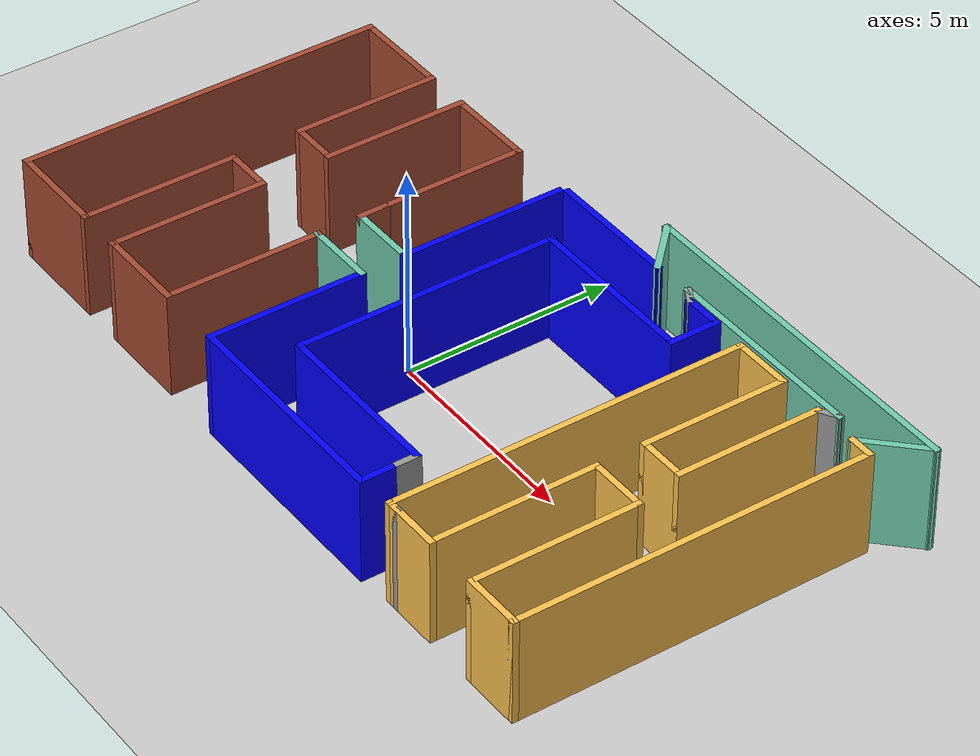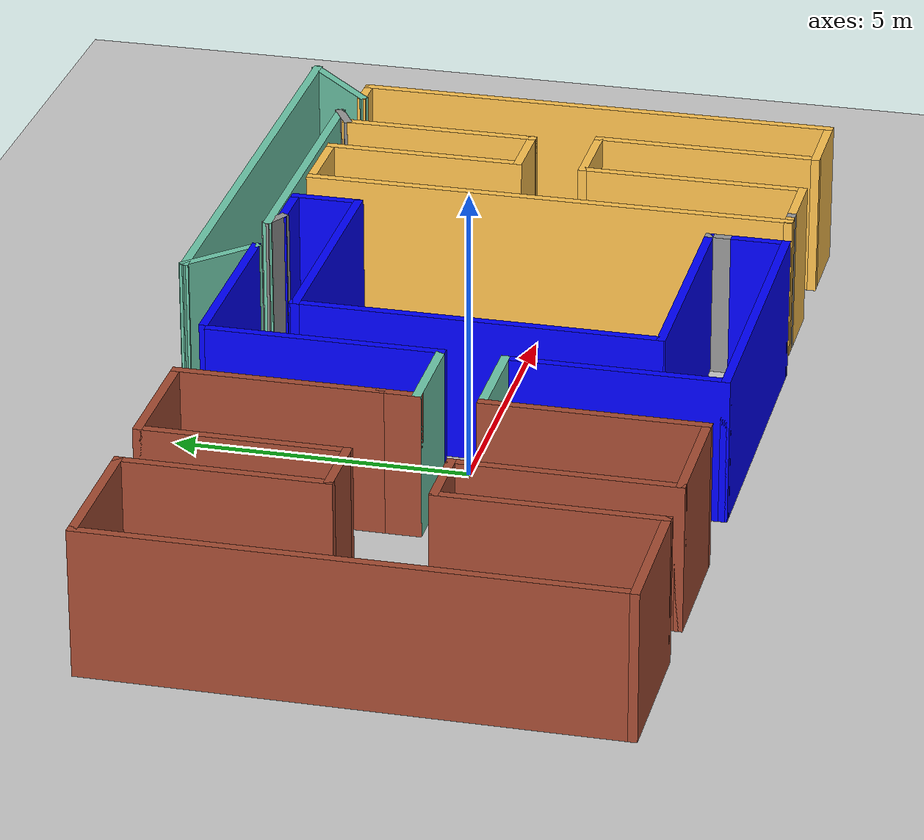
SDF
<sdf version="1.6">
 <world name="default">
  <light name="sun" type="directional">
   <pose>0 0 10 0 -0 0</pose>
   <diffuse>0.8 0.8 0.8 1</diffuse>
   <specular>0.2 0.2 0.2 1</specular>
   <attenuation>
    <range>1000</range>
    <constant>0.9</constant>
    <linear>0.01</linear>
    <quadratic>0.001</quadratic>
   </attenuation>
   <direction>-0.5 0.1 -0.9</direction>
  </light>
  <model name="ground_plane">
   <static>1</static>
   <link name="link">
    <collision name="collision">
     <geometry><plane><normal>0 0 1</normal><size>100 100</size></plane></geometry>
     <surface>
      <contact><collide_bitmask>65535</collide_bitmask></contact>
      <friction><ode><mu>100</mu><mu2>50</mu2></ode></friction>
     </surface>
    </collision>
    <visual name="visual">
     <cast_shadows>0</cast_shadows>
     <geometry><plane><normal>0 0 1</normal><size>100 100</size></plane></geometry>
     <material>
      <script><uri>file://media/materials/scripts/gazebo.material</uri><name>Gazebo/Grey</name></script>
     </material>
    </visual>
   </link>
  </model>
  <gravity>0 0 -9.8</gravity>
  <magnetic_field>6e-06 2.3e-05 -4.2e-05</magnetic_field>
  <atmosphere type="adiabatic"/>
  <physics name="default_physics" default="0" type="ode">
   <max_step_size>0.001</max_step_size>
   <real_time_factor>1</real_time_factor>
   <real_time_update_rate>1000</real_time_update_rate>
  </physics>
  <scene><ambient>0.4 0.4 0.4 1</ambient><background>0.7 0.7 0.7 1</background><shadows>1</shadows></scene>
  <spherical_coordinates>
   <surface_model>EARTH_WGS84</surface_model>
   <latitude_deg>0</latitude_deg>
   <longitude_deg>0</longitude_deg>
   <elevation>0</elevation>
   <heading_deg>0</heading_deg>
  </spherical_coordinates>
  <model name="HCH">
   <pose>1.28494 0.480102 0 0 -0 0</pose>
   <link name="Wall_10">
    <collision name="Wall_10_Collision">
     <geometry><box><size>3.5 0.15 2.5</size></box></geometry>
     <pose>0 0 1.25 0 -0 0</pose>
    </collision>
    <visual name="Wall_10_Visual">
     <pose>0 0 1.25 0 -0 0</pose>
     <geometry><box><size>3.5 0.15 2.5</size></box></geometry>
     <material>
      <script><uri>file://media/materials/scripts/gazebo.material</uri><name>Gazebo/Bricks</name></script>
      <ambient>1 1 1 1</ambient>
     </material>
     <meta><layer>0</layer></meta>
    </visual>
    <pose>-5.5798 2.11828 0 0 -0 1.5708</pose>
   </link>
   <link name="Wall_11">
    <collision name="Wall_11_Collision">
     <geometry><box><size>2.25 0.15 2.5</size></box></geometry>
     <pose>0 0 1.25 0 -0 0</pose>
    </collision>
    <visual name="Wall_11_Visual">
     <pose>0 0 1.25 0 -0 0</pose>
     <geometry><box><size>2.25 0.15 2.5</size></box></geometry>
     <material>
      <script><uri>file://media/materials/scripts/gazebo.material</uri><name>Gazebo/Bricks</name></script>
      <ambient>1 1 1 1</ambient>
     </material>
     <meta><layer>0</layer></meta>
    </visual>
    <pose>-4.5298 3.79328 0 0 -0 0</pose>
   </link>
   <link name="Wall_12">
    <collision name="Wall_12_Collision">
     <geometry><box><size>3.5 0.15 2.5</size></box></geometry>
     <pose>0 0 1.25 0 -0 0</pose>
    </collision>
    <visual name="Wall_12_Visual">
     <pose>0 0 1.25 0 -0 0</pose>
     <geometry><box><size>3.5 0.15 2.5</size></box></geometry>
     <material>
      <script><uri>file://media/materials/scripts/gazebo.material</uri><name>Gazebo/Bricks</name></script>
      <ambient>1 1 1 1</ambient>
     </material>
     <meta><layer>0</layer></meta>
    </visual>
    <pose>-3.4798 2.11828 0 0 0 -1.5708</pose>
   </link>
   <link name="Wall_14">
    <collision name="Wall_14_Collision">
     <geometry><box><size>3.75 0.15 2.5</size></box></geometry>
     <pose>0 0 1.25 0 -0 0</pose>
    </collision>
    <visual name="Wall_14_Visual">
     <pose>0 0 1.25 0 -0 0</pose>
     <geometry><box><size>3.75 0.15 2.5</size></box></geometry>
     <material>
      <script><uri>file://media/materials/scripts/gazebo.material</uri><name>Gazebo/Bricks</name></script>
      <ambient>1 1 1 1</ambient>
     </material>
     <meta><layer>0</layer></meta>
    </visual>
    <pose>-6.6798 -3.00672 0 0 -0 1.5708</pose>
   </link>
   <link name="Wall_15">
    <collision name="Wall_15_Collision">
     <geometry><box><size>1.25 0.15 2.5</size></box></geometry>
     <pose>0 0 1.25 0 -0 0</pose>
    </collision>
    <visual name="Wall_15_Visual">
     <pose>0 0 1.25 0 -0 0</pose>
     <geometry><box><size>1.25 0.15 2.5</size></box></geometry>
     <material>
      <script><uri>file://media/materials/scripts/gazebo.material</uri><name>Gazebo/Bricks</name></script>
      <ambient>1 1 1 1</ambient>
     </material>
     <meta><layer>0</layer></meta>
    </visual>
    <pose>-6.1298 -1.20672 0 0 -0 0</pose>
   </link>
   <link name="Wall_16">
    <collision name="Wall_16_Collision">
     <geometry><box><size>3.75 0.15 2.5</size></box></geometry>
     <pose>0 0 1.25 0 -0 0</pose>
    </collision>
    <visual name="Wall_16_Visual">
     <pose>0 0 1.25 0 -0 0</pose>
     <geometry><box><size>3.75 0.15 2.5</size></box></geometry>
     <material>
      <script><uri>file://media/materials/scripts/gazebo.material</uri><name>Gazebo/Bricks</name></script>
      <ambient>1 1 1 1</ambient>
     </material>
     <meta><layer>0</layer></meta>
    </visual>
    <pose>-5.5798 -3.00672 0 0 0 -1.5708</pose>
   </link>
   <link name="Wall_17">
    <collision name="Wall_17_Collision">
     <geometry><box><size>2.25 0.15 2.5</size></box></geometry>
     <pose>0 0 1.25 0 -0 0</pose>
    </collision>
    <visual name="Wall_17_Visual">
     <pose>0 0 1.25 0 -0 0</pose>
     <geometry><box><size>2.25 0.15 2.5</size></box></geometry>
     <material>
      <script><uri>file://media/materials/scripts/gazebo.material</uri><name>Gazebo/Bricks</name></script>
      <ambient>1 1 1 1</ambient>
     </material>
     <meta><layer>0</layer></meta>
    </visual>
    <pose>-4.5298 -4.80672 0 0 -0 0</pose>
   </link>
   <link name="Wall_18">
    <collision name="Wall_18_Collision">
     <geometry><box><size>3.75 0.15 2.5</size></box></geometry>
     <pose>0 0 1.25 0 -0 0</pose>
    </collision>
    <visual name="Wall_18_Visual">
     <pose>0 0 1.25 0 -0 0</pose>
     <geometry><box><size>3.75 0.15 2.5</size></box></geometry>
     <material>
      <script><uri>file://media/materials/scripts/gazebo.material</uri><name>Gazebo/Bricks</name></script>
      <ambient>1 1 1 1</ambient>
     </material>
     <meta><layer>0</layer></meta>
    </visual>
    <pose>-3.4798 -3.00672 0 0 -0 1.5708</pose>
   </link>
   <link name="Wall_19">
    <collision name="Wall_19_Collision">
     <geometry><box><size>1.75 0.15 2.5</size></box></geometry>
     <pose>0 0 1.25 0 -0 0</pose>
    </collision>
    <visual name="Wall_19_Visual">
     <pose>0 0 1.25 0 -0 0</pose>
     <geometry><box><size>1.75 0.15 2.5</size></box></geometry>
     <material>
      <script><uri>file://media/materials/scripts/gazebo.material</uri><name>Gazebo/Grey</name></script>
      <ambient>0.435294 0.796078 0.67451 1</ambient>
     </material>
     <meta><layer>0</layer></meta>
    </visual>
    <pose>-2.6798 -1.20672 0 0 -0 0</pose>
   </link>
   <link name="Wall_21">
    <collision name="Wall_21_Collision">
     <geometry><box><size>0.75 0.15 2.5</size></box></geometry>
     <pose>0 0 1.25 0 -0 0</pose>
    </collision>
    <visual name="Wall_21_Visual">
     <pose>0 0 1.25 0 -0 0</pose>
     <geometry><box><size>0.75 0.15 2.5</size></box></geometry>
     <material>
      <script><uri>file://media/materials/scripts/gazebo.material</uri><name>Gazebo/Bricks</name></script>
      <ambient>1 1 1 1</ambient>
     </material>
     <meta><layer>0</layer></meta>
    </visual>
    <pose>-3.4798 0.143283 0 0 0 -1.5708</pose>
   </link>
   <link name="Wall_27">
    <collision name="Wall_27_Collision">
     <geometry><box><size>1.75 0.15 2.5</size></box></geometry>
     <pose>0 0 1.25 0 -0 0</pose>
    </collision>
    <visual name="Wall_27_Visual">
     <pose>0 0 1.25 0 -0 0</pose>
     <geometry><box><size>1.75 0.15 2.5</size></box></geometry>
     <material>
      <script><uri>file://media/materials/scripts/gazebo.material</uri><name>Gazebo/Grey</name></script>
      <ambient>0.435294 0.796078 0.67451 1</ambient>
     </material>
     <meta><layer>0</layer></meta>
    </visual>
    <pose>-2.6798 -0.156717 0 0 -0 0</pose>
   </link>
   <link name="Wall_28">
    <collision name="Wall_28_Collision">
     <geometry><box><size>4 0.15 2.5</size></box></geometry>
     <pose>0 0 1.25 0 -0 0</pose>
    </collision>
    <visual name="Wall_28_Visual">
     <pose>0 0 1.25 0 -0 0</pose>
     <geometry><box><size>4 0.15 2.5</size></box></geometry>
     <material>
      <script><uri>file://media/materials/scripts/gazebo.material</uri><name>Gazebo/Grey</name></script>
      <ambient>0 0 1 1</ambient>
     </material>
     <meta><layer>0</layer></meta>
    </visual>
    <pose>-1.8798 1.76828 0 0 -0 1.5708</pose>
   </link>
   <link name="Wall_3">
    <collision name="Wall_3_Collision">
     <geometry><box><size>2.5 0.15 2.5</size></box></geometry>
     <pose>0 0 1.25 0 -0 0</pose>
    </collision>
    <visual name="Wall_3_Visual">
     <pose>0 0 1.25 0 -0 0</pose>
     <geometry><box><size>2.5 0.15 2.5</size></box></geometry>
     <material>
      <script><uri>file://media/materials/scripts/gazebo.material</uri><name>Gazebo/Bricks</name></script>
      <ambient>1 1 1 1</ambient>
     </material>
     <meta><layer>0</layer></meta>
    </visual>
    <pose>-7.8548 -4.80672 0 0 -0 0</pose>
   </link>
   <link name="Wall_30">
    <collision name="Wall_30_Collision">
     <geometry><box><size>1.25 0.15 2.5</size></box></geometry>
     <pose>0 0 1.25 0 -0 0</pose>
    </collision>
    <visual name="Wall_30_Visual">
     <pose>0 0 1.25 0 -0 0</pose>
     <geometry><box><size>1.25 0.15 2.5</size></box></geometry>
     <material>
      <script><uri>file://media/materials/scripts/gazebo.material</uri><name>Gazebo/Grey</name></script>
      <ambient>0 0 1 1</ambient>
     </material>
     <meta><layer>0</layer></meta>
    </visual>
    <pose>3.4702 3.14328 0 0 0 -1.5708</pose>
   </link>
   <link name="Wall_34">
    <collision name="Wall_34_Collision">
     <geometry><box><size>3.75 0.15 2.5</size></box></geometry>
     <pose>0 0 1.25 0 -0 0</pose>
    </collision>
    <visual name="Wall_34_Visual">
     <pose>0 0 1.25 0 -0 0</pose>
     <geometry><box><size>3.75 0.15 2.5</size></box></geometry>
     <material>
      <script><uri>file://media/materials/scripts/gazebo.material</uri><name>Gazebo/Grey</name></script>
      <ambient>0 0 1 1</ambient>
     </material>
     <meta><layer>0</layer></meta>
    </visual>
    <pose>-1.8798 -3.00672 0 0 0 -1.5708</pose>
   </link>
   <link name="Wall_37">
    <collision name="Wall_37_Collision">
     <geometry><box><size>5.5 0.15 2.5</size></box></geometry>
     <pose>0 0 1.25 0 -0 0</pose>
    </collision>
    <visual name="Wall_37_Visual">
     <pose>0 0 1.25 0 -0 0</pose>
     <geometry><box><size>5.5 0.15 2.5</size></box></geometry>
     <material>
      <script><uri>file://media/materials/scripts/gazebo.material</uri><name>Gazebo/Grey</name></script>
      <ambient>0 0 1 1</ambient>
     </material>
     <meta><layer>0</layer></meta>
    </visual>
    <pose>0.795197 -4.80672 0 0 -0 0</pose>
   </link>
   <link name="Wall_38">
    <collision name="Wall_38_Collision">
     <geometry><box><size>1 0.15 2.5</size></box></geometry>
     <pose>0 0 1.25 0 -0 0</pose>
    </collision>
    <visual name="Wall_38_Visual">
     <pose>0 0 1.25 0 -0 0</pose>
     <geometry><box><size>1 0.15 2.5</size></box></geometry>
     <material>
      <script><uri>file://media/materials/scripts/gazebo.material</uri><name>Gazebo/Grey</name></script>
      <ambient>0 0 1 1</ambient>
     </material>
     <meta><layer>0</layer></meta>
    </visual>
    <pose>3.4702 -4.38172 0 0 -0 1.5708</pose>
   </link>
   <link name="Wall_48">
    <collision name="Wall_48_Collision">
     <geometry><box><size>4.25 0.15 2.5</size></box></geometry>
     <pose>0 0 1.25 0 -0 0</pose>
    </collision>
    <visual name="Wall_48_Visual">
     <pose>0 0 1.25 0 -0 0</pose>
     <geometry><box><size>4.25 0.15 2.5</size></box></geometry>
     <material>
      <script><uri>file://media/materials/scripts/gazebo.material</uri><name>Gazebo/Grey</name></script>
      <ambient>0 0 1 1</ambient>
     </material>
     <meta><layer>0</layer></meta>
    </visual>
    <pose>1.4202 2.59328 0 0 -0 3.14159</pose>
   </link>
   <link name="Wall_49">
    <collision name="Wall_49_Collision">
     <geometry><box><size>6.25 0.15 2.5</size></box></geometry>
     <pose>0 0 1.25 0 -0 0</pose>
    </collision>
    <visual name="Wall_49_Visual">
     <pose>0 0 1.25 0 -0 0</pose>
     <geometry><box><size>6.25 0.15 2.5</size></box></geometry>
     <material>
      <script><uri>file://media/materials/scripts/gazebo.material</uri><name>Gazebo/Grey</name></script>
      <ambient>0 0 1 1</ambient>
     </material>
     <meta><layer>0</layer></meta>
    </visual>
    <pose>-0.629802 -0.430117 0 0 0 -1.5708</pose>
   </link>
   <link name="Wall_50">
    <collision name="Wall_50_Collision">
     <geometry><box><size>4.25 0.15 2.5</size></box></geometry>
     <pose>0 0 1.25 0 -0 0</pose>
    </collision>
    <visual name="Wall_50_Visual">
     <pose>0 0 1.25 0 -0 0</pose>
     <geometry><box><size>4.25 0.15 2.5</size></box></geometry>
     <material>
      <script><uri>file://media/materials/scripts/gazebo.material</uri><name>Gazebo/Grey</name></script>
      <ambient>0 0 1 1</ambient>
     </material>
     <meta><layer>0</layer></meta>
    </visual>
    <pose>1.4202 -3.50672 0 0 -0 0</pose>
   </link>
   <link name="Wall_51">
    <collision name="Wall_51_Collision">
     <geometry><box><size>0.6 0.15 2.5</size></box></geometry>
     <pose>0 0 1.25 0 -0 0</pose>
    </collision>
    <visual name="Wall_51_Visual">
     <pose>0 0 1.25 0 -0 0</pose>
     <geometry><box><size>0.6 0.15 2.5</size></box></geometry>
     <material>
      <script><uri>file://media/materials/scripts/gazebo.material</uri><name>Gazebo/Grey</name></script>
      <ambient>1 1 1 1</ambient>
     </material>
     <meta><layer>0</layer></meta>
    </visual>
    <pose>3.4702 -3.73172 0 0 0 -1.5708</pose>
   </link>
   <link name="Wall_53">
    <collision name="Wall_53_Collision">
     <geometry><box><size>1.5 0.15 2.5</size></box></geometry>
     <pose>0 0 1.25 0 -0 0</pose>
    </collision>
    <visual name="Wall_53_Visual">
     <pose>0 0 1.25 0 -0 0</pose>
     <geometry><box><size>1.5 0.15 2.5</size></box></geometry>
     <material>
      <script><uri>file://media/materials/scripts/gazebo.material</uri><name>Gazebo/Grey</name></script>
      <ambient>1 0.764706 0.305882 1</ambient>
     </material>
     <meta><layer>0</layer></meta>
    </visual>
    <pose>5.00454 3.64428 0 0 -0 0</pose>
   </link>
   <link name="Wall_54">
    <collision name="Wall_54_Collision">
     <geometry><box><size>3.5 0.15 2.5</size></box></geometry>
     <pose>0 0 1.25 0 -0 0</pose>
    </collision>
    <visual name="Wall_54_Visual">
     <pose>0 0 1.25 0 -0 0</pose>
     <geometry><box><size>3.5 0.15 2.5</size></box></geometry>
     <material>
      <script><uri>file://media/materials/scripts/gazebo.material</uri><name>Gazebo/Grey</name></script>
      <ambient>1 0.764706 0.305882 1</ambient>
     </material>
     <meta><layer>0</layer></meta>
    </visual>
    <pose>5.67954 1.96928 0 0 0 -1.5708</pose>
   </link>
   <link name="Wall_55">
    <collision name="Wall_55_Collision">
     <geometry><box><size>1.25 0.15 2.5</size></box></geometry>
     <pose>0 0 1.25 0 -0 0</pose>
    </collision>
    <visual name="Wall_55_Visual">
     <pose>0 0 1.25 0 -0 0</pose>
     <geometry><box><size>1.25 0.15 2.5</size></box></geometry>
     <material>
      <script><uri>file://media/materials/scripts/gazebo.material</uri><name>Gazebo/Grey</name></script>
      <ambient>1 0.764706 0.305882 1</ambient>
     </material>
     <meta><layer>0</layer></meta>
    </visual>
    <pose>6.22954 0.29428 0 0 -0 0</pose>
   </link>
   <link name="Wall_56">
    <collision name="Wall_56_Collision">
     <geometry><box><size>3.5 0.15 2.5</size></box></geometry>
     <pose>0 0 1.25 0 -0 0</pose>
    </collision>
    <visual name="Wall_56_Visual">
     <pose>0 0 1.25 0 -0 0</pose>
     <geometry><box><size>3.5 0.15 2.5</size></box></geometry>
     <material>
      <script><uri>file://media/materials/scripts/gazebo.material</uri><name>Gazebo/Grey</name></script>
      <ambient>1 0.764706 0.305882 1</ambient>
     </material>
     <meta><layer>0</layer></meta>
    </visual>
    <pose>6.77954 1.96928 0 0 -0 1.5708</pose>
   </link>
   <link name="Wall_6">
    <collision name="Wall_6_Collision">
     <geometry><box><size>8.75 0.15 2.5</size></box></geometry>
     <pose>0 0 1.25 0 -0 0</pose>
    </collision>
    <visual name="Wall_6_Visual">
     <pose>0 0 1.25 0 -0 0</pose>
     <geometry><box><size>8.75 0.15 2.5</size></box></geometry>
     <material>
      <script><uri>file://media/materials/scripts/gazebo.material</uri><name>Gazebo/Bricks</name></script>
      <ambient>1 1 1 1</ambient>
     </material>
     <meta><layer>0</layer></meta>
    </visual>
    <pose>-9.0298 -0.506717 0 0 -0 1.5708</pose>
   </link>
   <link name="Wall_60">
    <collision name="Wall_60_Collision">
     <geometry><box><size>8.5 0.15 2.5</size></box></geometry>
     <pose>0 0 1.25 0 -0 0</pose>
    </collision>
    <visual name="Wall_60_Visual">
     <pose>0 0 1.25 0 -0 0</pose>
     <geometry><box><size>8.5 0.15 2.5</size></box></geometry>
     <material>
      <script><uri>file://media/materials/scripts/gazebo.material</uri><name>Gazebo/Grey</name></script>
      <ambient>1 0.764706 0.305882 1</ambient>
     </material>
     <meta><layer>0</layer></meta>
    </visual>
    <pose>8.37954 -0.53072 0 0 0 -1.5708</pose>
   </link>
   <link name="Wall_63">
    <collision name="Wall_63_Collision">
     <geometry><box><size>1.5 0.15 2.5</size></box></geometry>
     <pose>0 0 1.25 0 -0 0</pose>
    </collision>
    <visual name="Wall_63_Visual">
     <pose>0 0 1.25 0 -0 0</pose>
     <geometry><box><size>1.5 0.15 2.5</size></box></geometry>
     <material>
      <script><uri>file://media/materials/scripts/gazebo.material</uri><name>Gazebo/Grey</name></script>
      <ambient>1 0.764706 0.305882 1</ambient>
     </material>
     <meta><layer>0</layer></meta>
    </visual>
    <pose>7.70454 -4.70572 0 0 -0 3.14159</pose>
   </link>
   <link name="Wall_64">
    <collision name="Wall_64_Collision">
     <geometry><box><size>4 0.15 2.5</size></box></geometry>
     <pose>0 0 1.25 0 -0 0</pose>
    </collision>
    <visual name="Wall_64_Visual">
     <pose>0 0 1.25 0 -0 0</pose>
     <geometry><box><size>4 0.15 2.5</size></box></geometry>
     <material>
      <script><uri>file://media/materials/scripts/gazebo.material</uri><name>Gazebo/Grey</name></script>
      <ambient>1 0.764706 0.305882 1</ambient>
     </material>
     <meta><layer>0</layer></meta>
    </visual>
    <pose>7.02954 -2.78072 0 0 -0 1.5708</pose>
   </link>
   <link name="Wall_65">
    <collision name="Wall_65_Collision">
     <geometry><box><size>1.5 0.15 2.5</size></box></geometry>
     <pose>0 0 1.25 0 -0 0</pose>
    </collision>
    <visual name="Wall_65_Visual">
     <pose>0 0 1.25 0 -0 0</pose>
     <geometry><box><size>1.5 0.15 2.5</size></box></geometry>
     <material>
      <script><uri>file://media/materials/scripts/gazebo.material</uri><name>Gazebo/Grey</name></script>
      <ambient>1 0.764706 0.305882 1</ambient>
     </material>
     <meta><layer>0</layer></meta>
    </visual>
    <pose>6.35454 -0.85572 0 0 -0 3.14159</pose>
   </link>
   <link name="Wall_66">
    <collision name="Wall_66_Collision">
     <geometry><box><size>4 0.15 2.5</size></box></geometry>
     <pose>0 0 1.25 0 -0 0</pose>
    </collision>
    <visual name="Wall_66_Visual">
     <pose>0 0 1.25 0 -0 0</pose>
     <geometry><box><size>4 0.15 2.5</size></box></geometry>
     <material>
      <script><uri>file://media/materials/scripts/gazebo.material</uri><name>Gazebo/Grey</name></script>
      <ambient>1 0.764706 0.305882 1</ambient>
     </material>
     <meta><layer>0</layer></meta>
    </visual>
    <pose>5.67954 -2.78072 0 0 0 -1.5708</pose>
   </link>
   <link name="Wall_68">
    <collision name="Wall_68_Collision">
     <geometry><box><size>0.15 0.15 2.5</size></box></geometry>
     <pose>0 0 1.25 0 -0 0</pose>
    </collision>
    <visual name="Wall_68_Visual">
     <pose>0 0 1.25 0 -0 0</pose>
     <geometry><box><size>0.15 0.15 2.5</size></box></geometry>
     <material>
      <script><uri>file://media/materials/scripts/gazebo.material</uri><name>Gazebo/Grey</name></script>
      <ambient>0 0 0 0</ambient>
     </material>
     <meta><layer>0</layer></meta>
    </visual>
    <pose>4.57954 -4.70572 0 0 -0 0</pose>
   </link>
   <link name="Wall_69">
    <collision name="Wall_69_Collision">
     <geometry><box><size>1.5 0.15 2.5</size></box></geometry>
     <pose>0 0 1.25 0 -0 0</pose>
    </collision>
    <visual name="Wall_69_Visual">
     <pose>0 0 1.25 0 -0 0</pose>
     <geometry><box><size>1.5 0.15 2.5</size></box></geometry>
     <material>
      <script><uri>file://media/materials/scripts/gazebo.material</uri><name>Gazebo/Grey</name></script>
      <ambient>1 0.764706 0.305882 1</ambient>
     </material>
     <meta><layer>0</layer></meta>
    </visual>
    <pose>5.00454 -4.70572 0 0 -0 3.14159</pose>
   </link>
   <link name="Wall_7">
    <collision name="Wall_7_Collision">
     <geometry><box><size>2.5 0.15 2.5</size></box></geometry>
     <pose>0 0 1.25 0 -0 0</pose>
    </collision>
    <visual name="Wall_7_Visual">
     <pose>0 0 1.25 0 -0 0</pose>
     <geometry><box><size>2.5 0.15 2.5</size></box></geometry>
     <material>
      <script><uri>file://media/materials/scripts/gazebo.material</uri><name>Gazebo/Bricks</name></script>
      <ambient>1 1 1 1</ambient>
     </material>
     <meta><layer>0</layer></meta>
    </visual>
    <pose>-7.8548 3.79328 0 0 -0 0</pose>
   </link>
   <link name="Wall_70">
    <collision name="Wall_70_Collision">
     <geometry><box><size>8.5 0.15 2.5</size></box></geometry>
     <pose>0 0 1.25 0 -0 0</pose>
    </collision>
    <visual name="Wall_70_Visual">
     <pose>0 0 1.25 0 -0 0</pose>
     <geometry><box><size>8.5 0.15 2.5</size></box></geometry>
     <material>
      <script><uri>file://media/materials/scripts/gazebo.material</uri><name>Gazebo/Grey</name></script>
      <ambient>1 0.764706 0.305882 1</ambient>
     </material>
     <meta><layer>0</layer></meta>
    </visual>
    <pose>4.32954 -0.53072 0 0 -0 1.5708</pose>
   </link>
   <link name="Wall_74">
    <collision name="Wall_74_Collision">
     <geometry><box><size>1.75 0.15 2.5</size></box></geometry>
     <pose>0 0 1.25 0 -0 0</pose>
    </collision>
    <visual name="Wall_74_Visual">
     <pose>0 0 1.25 0 -0 0</pose>
     <geometry><box><size>1.75 0.15 2.5</size></box></geometry>
     <material>
      <script><uri>file://media/materials/scripts/gazebo.material</uri><name>Gazebo/Grey</name></script>
      <ambient>0.435294 0.796078 0.67451 1</ambient>
     </material>
     <meta><layer>0</layer></meta>
    </visual>
    <pose>8.43305 4.20997 0 0 -0 0.785398</pose>
   </link>
   <link name="Wall_75">
    <collision name="Wall_75_Collision">
     <geometry><box><size>8.75 0.15 2.5</size></box></geometry>
     <pose>0 0 1.25 0 -0 0</pose>
    </collision>
    <visual name="Wall_75_Visual">
     <pose>0 0 1.25 0 -0 0</pose>
     <geometry><box><size>8.75 0.15 2.5</size></box></geometry>
     <material>
      <script><uri>file://media/materials/scripts/gazebo.material</uri><name>Gazebo/Grey</name></script>
      <ambient>0.435294 0.796078 0.67451 1</ambient>
     </material>
     <meta><layer>0</layer></meta>
    </visual>
    <pose>4.69874 4.77565 0 0 -0 3.14159</pose>
   </link>
   <link name="Wall_76">
    <collision name="Wall_76_Collision">
     <geometry><box><size>1.5 0.15 2.5</size></box></geometry>
     <pose>0 0 1.25 0 -0 0</pose>
    </collision>
    <visual name="Wall_76_Visual">
     <pose>0 0 1.25 0 -0 0</pose>
     <geometry><box><size>1.5 0.15 2.5</size></box></geometry>
     <material>
      <script><uri>file://media/materials/scripts/gazebo.material</uri><name>Gazebo/Grey</name></script>
      <ambient>0.435294 0.796078 0.67451 1</ambient>
     </material>
     <meta><layer>0</layer></meta>
    </visual>
    <pose>0.876034 4.29835 0 0 0 -0.785398</pose>
   </link>
   <link name="Wall_77">
    <collision name="Wall_77_Collision">
     <geometry><box><size>3.25 0.15 2.5</size></box></geometry>
     <pose>0 0 1.25 0 -0 0</pose>
    </collision>
    <visual name="Wall_77_Visual">
     <pose>0 0 1.25 0 -0 0</pose>
     <geometry><box><size>3.25 0.15 2.5</size></box></geometry>
     <material>
      <script><uri>file://media/materials/scripts/gazebo.material</uri><name>Gazebo/Grey</name></script>
      <ambient>0 0 1 1</ambient>
     </material>
     <meta><layer>0</layer></meta>
    </visual>
    <pose>-0.196669 3.82106 0 0 -0 3.14159</pose>
   </link>
   <link name="Wall_79">
    <collision name="Wall_79_Collision">
     <geometry><box><size>1 0.15 2.5</size></box></geometry>
     <pose>0 0 1.25 0 -0 0</pose>
    </collision>
    <visual name="Wall_79_Visual">
     <pose>0 0 1.25 0 -0 0</pose>
     <geometry><box><size>1 0.15 2.5</size></box></geometry>
     <material>
      <script><uri>file://media/materials/scripts/gazebo.material</uri><name>Gazebo/Grey</name></script>
      <ambient>0 0 1 1</ambient>
     </material>
     <meta><layer>0</layer></meta>
    </visual>
    <pose>3.0452 3.69328 0 0 -0 3.14159</pose>
   </link>
   <link name="Wall_8">
    <collision name="Wall_8_Collision">
     <geometry><box><size>3.5 0.15 2.5</size></box></geometry>
     <pose>0 0 1.25 0 -0 0</pose>
    </collision>
    <visual name="Wall_8_Visual">
     <pose>0 0 1.25 0 -0 0</pose>
     <geometry><box><size>3.5 0.15 2.5</size></box></geometry>
     <material>
      <script><uri>file://media/materials/scripts/gazebo.material</uri><name>Gazebo/Bricks</name></script>
      <ambient>1 1 1 1</ambient>
     </material>
     <meta><layer>0</layer></meta>
    </visual>
    <pose>-6.6798 2.11828 0 0 0 -1.5708</pose>
   </link>
   <link name="Wall_80">
    <collision name="Wall_80_Collision">
     <geometry><box><size>0.5 0.15 2.5</size></box></geometry>
     <pose>0 0 1.25 0 -0 0</pose>
    </collision>
    <visual name="Wall_80_Visual">
     <pose>0 0 1.25 0 -0 0</pose>
     <geometry><box><size>0.5 0.15 2.5</size></box></geometry>
     <material>
      <script><uri>file://media/materials/scripts/gazebo.material</uri><name>Gazebo/Grey</name></script>
      <ambient>1 1 1 1</ambient>
     </material>
     <meta><layer>0</layer></meta>
    </visual>
    <pose>2.46864 3.78078 0 0 -0 2.61799</pose>
   </link>
   <link name="Wall_81">
    <collision name="Wall_81_Collision">
     <geometry><box><size>5 0.15 2.5</size></box></geometry>
     <pose>0 0 1.25 0 -0 0</pose>
    </collision>
    <visual name="Wall_81_Visual">
     <pose>0 0 1.25 0 -0 0</pose>
     <geometry><box><size>5 0.15 2.5</size></box></geometry>
     <material>
      <script><uri>file://media/materials/scripts/gazebo.material</uri><name>Gazebo/Grey</name></script>
      <ambient>0.435294 0.796078 0.67451 1</ambient>
     </material>
     <meta><layer>0</layer></meta>
    </visual>
    <pose>4.74209 3.86828 0 0 -0 0</pose>
   </link>
   <link name="Wall_82">
    <collision name="Wall_82_Collision">
     <geometry><box><size>0.597629 0.15 2.5</size></box></geometry>
     <pose>0 0 1.25 0 -0 0</pose>
    </collision>
    <visual name="Wall_82_Visual">
     <pose>0 0 1.25 0 -0 0</pose>
     <geometry><box><size>0.597629 0.15 2.5</size></box></geometry>
     <material>
      <script><uri>file://media/materials/scripts/gazebo.material</uri><name>Gazebo/Grey</name></script>
      <ambient>1 1 1 1</ambient>
     </material>
     <meta><layer>0</layer></meta>
    </visual>
    <pose>6.97331 3.75628 0 0 0 -2.61751</pose>
   </link>
   <link name="Wall_84">
    <collision name="Wall_84_Collision">
     <geometry><box><size>0.662174 0.15 2.5</size></box></geometry>
     <pose>0 0 1.25 0 -0 0</pose>
    </collision>
    <visual name="Wall_84_Visual">
     <pose>0 0 1.25 0 -0 0</pose>
     <geometry><box><size>0.662174 0.15 2.5</size></box></geometry>
     <material>
      <script><uri>file://media/materials/scripts/gazebo.material</uri><name>Gazebo/Grey</name></script>
      <ambient>1 0.764706 0.305882 1</ambient>
     </material>
     <meta><layer>0</layer></meta>
    </visual>
    <pose>8.12345 3.64428 0 0 -0 0</pose>
   </link>
   <link name="Wall_9">
    <collision name="Wall_9_Collision">
     <geometry><box><size>1.25 0.15 2.5</size></box></geometry>
     <pose>0 0 1.25 0 -0 0</pose>
    </collision>
    <visual name="Wall_9_Visual">
     <pose>0 0 1.25 0 -0 0</pose>
     <geometry><box><size>1.25 0.15 2.5</size></box></geometry>
     <material>
      <script><uri>file://media/materials/scripts/gazebo.material</uri><name>Gazebo/Bricks</name></script>
      <ambient>1 1 1 1</ambient>
     </material>
     <meta><layer>0</layer></meta>
    </visual>
    <pose>-6.1298 0.443283 0 0 -0 0</pose>
   </link>
   <static>1</static>
  </model>
 </world>
</sdf>
